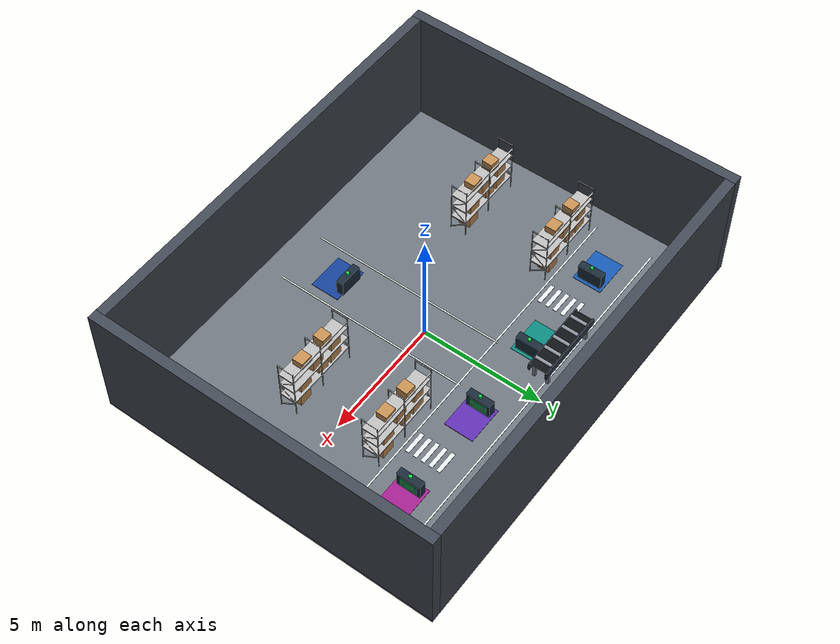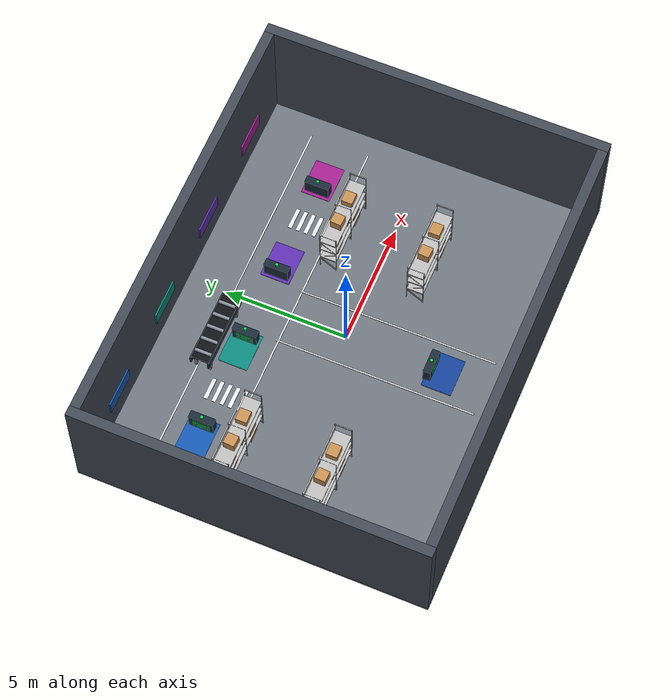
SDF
<?xml version="1.0"?>
<sdf version="1.9"><world name="default">
  <physics name="fast" type="ignored"><max_step_size>0.001</max_step_size><real_time_factor>1</real_time_factor></physics>
  <plugin filename="gz-sim-physics-system" name="gz::sim::systems::Physics"/>
  <plugin filename="gz-sim-user-commands-system" name="gz::sim::systems::UserCommands"/>
  <plugin filename="gz-sim-scene-broadcaster-system" name="gz::sim::systems::SceneBroadcaster"/>
  <plugin filename="gz-sim-sensors-system" name="gz::sim::systems::Sensors"><render_engine>ogre2</render_engine></plugin>
  <plugin filename="gz-sim-imu-system" name="gz::sim::systems::Imu"/>
  <scene>
    <ambient>0.32 0.34 0.38 1</ambient>
    <background>0.12 0.15 0.20 1</background>
    <shadows>true</shadows>
  </scene>
  <light type="directional" name="sun">
    <pose>0 0 10 0 0 0</pose>
    <diffuse>0.78 0.80 0.84 1</diffuse>
    <specular>0.25 0.25 0.25 1</specular>
    <direction>-0.3 0.2 -1</direction>
    <cast_shadows>true</cast_shadows>
  </light>
  <light type="point" name="warehouse_light_west">
    <pose>-5 0 5.0 0 0 0</pose><diffuse>0.78 0.84 1.0 1</diffuse>
    <specular>0.15 0.15 0.15 1</specular><attenuation><range>12</range><constant>0.7</constant><linear>0.03</linear><quadratic>0.01</quadratic></attenuation>
  </light>
  <light type="point" name="warehouse_light_center">
    <pose>0 0 5.0 0 0 0</pose><diffuse>0.78 0.84 1.0 1</diffuse>
    <specular>0.15 0.15 0.15 1</specular><attenuation><range>12</range><constant>0.7</constant><linear>0.03</linear><quadratic>0.01</quadratic></attenuation>
  </light>
  <light type="point" name="warehouse_light_east">
    <pose>5 0 5.0 0 0 0</pose><diffuse>0.78 0.84 1.0 1</diffuse>
    <specular>0.15 0.15 0.15 1</specular><attenuation><range>12</range><constant>0.7</constant><linear>0.03</linear><quadratic>0.01</quadratic></attenuation>
  </light>
  <model name="ground_plane">
    <static>true</static>
    <pose>0 0 0.05 0 0 0</pose>
    <link name="link">
      <collision name="collision">
        <geometry><plane><normal>0 0 1</normal><size>200 200</size></plane></geometry>
      </collision>
    </link>
  </model>
  <model name="floor">
    <static>true</static>
    <link name="link">
      <visual name="visual">
        <geometry><box><size>18 14 0.1</size></box></geometry>
        <material>
          <ambient>0.30 0.32 0.35 1</ambient>
          <diffuse>0.42 0.45 0.48 1</diffuse>
          <!-- AWS RoboMaker GroundB concrete (MIT-0), one tile per 4 m. -->
          <pbr><metal><roughness>0.88</roughness><albedo_map>textures/floor.png</albedo_map></metal></pbr>
          <texrepeat>0.25 0.25</texrepeat>
        </material>
      </visual>
    </link>
  </model>

  <!-- Visual-only traffic markings and color-coded work cells.  They do not
       alter the navigation map or LiDAR collision geometry. -->
  <model name="warehouse_floor_markings">
    <static>true</static>
    <link name="link">
      <visual name="centre_lane_left"><pose>-1.15 -1.65 0.058 0 0 0</pose><geometry><box><size>0.06 8.1 0.016</size></box></geometry><material><diffuse>0.92 0.94 0.96 1</diffuse></material></visual>
      <visual name="centre_lane_right"><pose>1.15 -1.65 0.058 0 0 0</pose><geometry><box><size>0.06 8.1 0.016</size></box></geometry><material><diffuse>0.92 0.94 0.96 1</diffuse></material></visual>
      <visual name="north_lane_lower"><pose>0 2.30 0.058 0 0 0</pose><geometry><box><size>15.5 0.06 0.016</size></box></geometry><material><diffuse>0.92 0.94 0.96 1</diffuse></material></visual>
      <visual name="north_lane_upper"><pose>0 4.72 0.058 0 0 0</pose><geometry><box><size>15.5 0.06 0.016</size></box></geometry><material><diffuse>0.92 0.94 0.96 1</diffuse></material></visual>

      <visual name="crosswalk_left_1"><pose>-4.0 2.55 0.061 0 0 0</pose><geometry><box><size>0.90 0.16 0.018</size></box></geometry><material><diffuse>0.88 0.90 0.92 1</diffuse></material></visual>
      <visual name="crosswalk_left_2"><pose>-4.0 2.88 0.061 0 0 0</pose><geometry><box><size>0.90 0.16 0.018</size></box></geometry><material><diffuse>0.88 0.90 0.92 1</diffuse></material></visual>
      <visual name="crosswalk_left_3"><pose>-4.0 3.21 0.061 0 0 0</pose><geometry><box><size>0.90 0.16 0.018</size></box></geometry><material><diffuse>0.88 0.90 0.92 1</diffuse></material></visual>
      <visual name="crosswalk_left_4"><pose>-4.0 3.54 0.061 0 0 0</pose><geometry><box><size>0.90 0.16 0.018</size></box></geometry><material><diffuse>0.88 0.90 0.92 1</diffuse></material></visual>
      <visual name="crosswalk_left_5"><pose>-4.0 3.87 0.061 0 0 0</pose><geometry><box><size>0.90 0.16 0.018</size></box></geometry><material><diffuse>0.88 0.90 0.92 1</diffuse></material></visual>
      <visual name="crosswalk_right_1"><pose>4.0 2.55 0.061 0 0 0</pose><geometry><box><size>0.90 0.16 0.018</size></box></geometry><material><diffuse>0.88 0.90 0.92 1</diffuse></material></visual>
      <visual name="crosswalk_right_2"><pose>4.0 2.88 0.061 0 0 0</pose><geometry><box><size>0.90 0.16 0.018</size></box></geometry><material><diffuse>0.88 0.90 0.92 1</diffuse></material></visual>
      <visual name="crosswalk_right_3"><pose>4.0 3.21 0.061 0 0 0</pose><geometry><box><size>0.90 0.16 0.018</size></box></geometry><material><diffuse>0.88 0.90 0.92 1</diffuse></material></visual>
      <visual name="crosswalk_right_4"><pose>4.0 3.54 0.061 0 0 0</pose><geometry><box><size>0.90 0.16 0.018</size></box></geometry><material><diffuse>0.88 0.90 0.92 1</diffuse></material></visual>
      <visual name="crosswalk_right_5"><pose>4.0 3.87 0.061 0 0 0</pose><geometry><box><size>0.90 0.16 0.018</size></box></geometry><material><diffuse>0.88 0.90 0.92 1</diffuse></material></visual>

      <visual name="home_pad"><pose>0 -4.0 0.063 0 0 0</pose><geometry><box><size>1.55 1.20 0.02</size></box></geometry><material><diffuse>0.08 0.25 0.58 1</diffuse></material></visual>
      <visual name="storage_pad"><pose>-6.0 3.5 0.063 0 0 0</pose><geometry><box><size>1.55 1.20 0.02</size></box></geometry><material><diffuse>0.08 0.34 0.68 1</diffuse></material></visual>
      <visual name="assembly_pad"><pose>-2.0 3.5 0.063 0 0 0</pose><geometry><box><size>1.55 1.20 0.02</size></box></geometry><material><diffuse>0.04 0.52 0.48 1</diffuse></material></visual>
      <visual name="inspection_pad"><pose>2.0 3.5 0.063 0 0 0</pose><geometry><box><size>1.55 1.20 0.02</size></box></geometry><material><diffuse>0.36 0.18 0.68 1</diffuse></material></visual>
      <visual name="packaging_pad"><pose>6.0 3.5 0.063 0 0 0</pose><geometry><box><size>1.55 1.20 0.02</size></box></geometry><material><diffuse>0.62 0.12 0.55 1</diffuse></material></visual>
    </link>
  </model>

  <!-- Wall-mounted color panels identify the four mission stations while
       remaining inside the already occupied north-wall footprint. -->
  <model name="station_signs">
    <static>true</static>
    <link name="link">
      <visual name="storage_sign"><pose>-6.0 6.57 1.55 0 0 0</pose><geometry><box><size>1.60 0.06 0.62</size></box></geometry><material><diffuse>0.08 0.34 0.68 1</diffuse><emissive>0.01 0.04 0.10 1</emissive></material></visual>
      <visual name="assembly_sign"><pose>-2.0 6.57 1.55 0 0 0</pose><geometry><box><size>1.60 0.06 0.62</size></box></geometry><material><diffuse>0.04 0.52 0.48 1</diffuse><emissive>0.01 0.08 0.07 1</emissive></material></visual>
      <visual name="inspection_sign"><pose>2.0 6.57 1.55 0 0 0</pose><geometry><box><size>1.60 0.06 0.62</size></box></geometry><material><diffuse>0.36 0.18 0.68 1</diffuse><emissive>0.05 0.02 0.10 1</emissive></material></visual>
      <visual name="packaging_sign"><pose>6.0 6.57 1.55 0 0 0</pose><geometry><box><size>1.60 0.06 0.62</size></box></geometry><material><diffuse>0.62 0.12 0.55 1</diffuse><emissive>0.09 0.01 0.08 1</emissive></material></visual>
    </link>
  </model>

  <!-- Walls look 5 m tall (AWS RoboMaker WallB texture, MIT-0); the 1.6 m
       collision boxes are what the LiDAR and the map use. -->
  <!-- Physical perimeter corresponding to the occupied border in
       warehouse_map.pgm (origin -9,-7, resolution 0.2 m). -->
  <model name="wall_west">
    <static>true</static><pose>-8.8 0 0.8 0 0 0</pose><link name="link">
      <collision name="collision"><geometry><box><size>0.4 14 1.6</size></box></geometry></collision>
      <visual name="visual"><pose>0 0 1.7 0 0 0</pose><geometry><box><size>0.4 14 5.0</size></box></geometry><material><diffuse>0.25 0.28 0.32 1</diffuse><pbr><metal><albedo_map>textures/wall.png</albedo_map></metal></pbr><texrepeat>0.25 0.25</texrepeat></material></visual>
    </link>
  </model>
  <model name="wall_east">
    <static>true</static><pose>8.8 0 0.8 0 0 0</pose><link name="link">
      <collision name="collision"><geometry><box><size>0.4 14 1.6</size></box></geometry></collision>
      <visual name="visual"><pose>0 0 1.7 0 0 0</pose><geometry><box><size>0.4 14 5.0</size></box></geometry><material><diffuse>0.25 0.28 0.32 1</diffuse><pbr><metal><albedo_map>textures/wall.png</albedo_map></metal></pbr><texrepeat>0.25 0.25</texrepeat></material></visual>
    </link>
  </model>
  <model name="wall_south">
    <static>true</static><pose>0 -6.8 0.8 0 0 0</pose><link name="link">
      <collision name="collision"><geometry><box><size>17.2 0.4 1.6</size></box></geometry></collision>
      <visual name="visual"><pose>0 0 1.7 0 0 0</pose><geometry><box><size>17.2 0.4 5.0</size></box></geometry><material><diffuse>0.25 0.28 0.32 1</diffuse><pbr><metal><albedo_map>textures/wall.png</albedo_map></metal></pbr><texrepeat>0.25 0.25</texrepeat></material></visual>
    </link>
  </model>
  <model name="wall_north">
    <static>true</static><pose>0 6.8 0.8 0 0 0</pose><link name="link">
      <collision name="collision"><geometry><box><size>17.2 0.4 1.6</size></box></geometry></collision>
      <visual name="visual"><pose>0 0 1.7 0 0 0</pose><geometry><box><size>17.2 0.4 5.0</size></box></geometry><material><diffuse>0.25 0.28 0.32 1</diffuse><pbr><metal><albedo_map>textures/wall.png</albedo_map></metal></pbr><texrepeat>0.25 0.25</texrepeat></material></visual>
    </link>
  </model>
  <include><uri>model://shelf</uri><name>shelf_west_1</name><pose>-6 -1.8 0 0 0 0</pose></include>
  <include><uri>model://shelf</uri><name>shelf_west_2</name><pose>-6 1.8 0 0 0 0</pose></include>
  <include><uri>model://shelf</uri><name>shelf_east_1</name><pose>4 -1.8 0 0 0 0</pose></include>
  <include><uri>model://shelf</uri><name>shelf_east_2</name><pose>4 1.8 0 0 0 0</pose></include>
  <include><uri>model://conveyor</uri><name>assembly_conveyor</name><pose>-2 4.5 0 0 0 0</pose></include>
  <!-- Physical docks sit beyond each configured docking pose, leaving the
       robot footprint and the -0.70 m staging pose collision-free. -->
  <include><uri>model://docking_station</uri><name>dock_home</name><pose>0 -3.35 0 0 0 1.57</pose></include>
  <include><uri>model://docking_station</uri><name>dock_s1</name><pose>-5.35 3.5 0 0 0 0</pose></include>
  <include><uri>model://docking_station</uri><name>dock_s2</name><pose>-1.35 3.5 0 0 0 0</pose></include>
  <include><uri>model://docking_station</uri><name>dock_s3</name><pose>1.35 3.5 0 0 0 3.14</pose></include>
  <include><uri>model://docking_station</uri><name>dock_s4</name><pose>5.35 3.5 0 0 0 3.14</pose></include>
</world></sdf>

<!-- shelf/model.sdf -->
<sdf version="1.9">
  <model name="shelf">
    <static>true</static>
    <link name="link">
      <!-- One conservative collision envelope: the LiDAR, the Nav2 map and
           physics all use it, whatever the visual detail. -->
      <collision name="collision">
        <pose>0 0 1.2 0 0 0</pose>
        <geometry><box><size>3.0 0.7 2.4</size></box></geometry>
      </collision>
      <visual name="mesh_0"><geometry><mesh><uri>meshes/shelf_0.obj</uri></mesh></geometry><material><pbr><metal><albedo_map>materials/textures/shelf_0.png</albedo_map></metal></pbr></material></visual>
      <visual name="stock_lower_1"><pose>-0.85 0.0 0.935 0 0 0.05</pose><geometry><box><size>0.6 0.5 0.45</size></box></geometry><material><diffuse>0.76 0.55 0.32 1</diffuse><pbr><metal><albedo_map>model://cargo_box/materials/textures/cardboard.png</albedo_map></metal></pbr><texrepeat>1.2 1.2</texrepeat></material></visual>
      <visual name="stock_lower_2"><pose>-0.2 0.02 0.885 0 0 -0.08</pose><geometry><box><size>0.45 0.45 0.35</size></box></geometry><material><diffuse>0.76 0.55 0.32 1</diffuse><pbr><metal><albedo_map>model://cargo_box/materials/textures/cardboard.png</albedo_map></metal></pbr><texrepeat>1.2 1.2</texrepeat></material></visual>
      <visual name="stock_lower_3"><pose>0.75 -0.02 0.960 0 0 0.0</pose><geometry><box><size>0.55 0.5 0.5</size></box></geometry><material><diffuse>0.76 0.55 0.32 1</diffuse><pbr><metal><albedo_map>model://cargo_box/materials/textures/cardboard.png</albedo_map></metal></pbr><texrepeat>1.2 1.2</texrepeat></material></visual>
      <visual name="stock_middle_1"><pose>-0.9 0.0 1.490 0 0 0.0</pose><geometry><box><size>0.5 0.5 0.4</size></box></geometry><material><diffuse>0.76 0.55 0.32 1</diffuse><pbr><metal><albedo_map>model://cargo_box/materials/textures/cardboard.png</albedo_map></metal></pbr><texrepeat>1.2 1.2</texrepeat></material></visual>
      <visual name="stock_middle_2"><pose>0.1 0.01 1.515 0 0 0.1</pose><geometry><box><size>0.6 0.5 0.45</size></box></geometry><material><diffuse>0.76 0.55 0.32 1</diffuse><pbr><metal><albedo_map>model://cargo_box/materials/textures/cardboard.png</albedo_map></metal></pbr><texrepeat>1.2 1.2</texrepeat></material></visual>
      <visual name="stock_upper_1"><pose>-0.5 0.0 2.060 0 0 -0.05</pose><geometry><box><size>0.45 0.45 0.4</size></box></geometry><material><diffuse>0.76 0.55 0.32 1</diffuse><pbr><metal><albedo_map>model://cargo_box/materials/textures/cardboard.png</albedo_map></metal></pbr><texrepeat>1.2 1.2</texrepeat></material></visual>
      <visual name="stock_upper_2"><pose>0.6 0.0 2.010 0 0 0.0</pose><geometry><box><size>0.5 0.45 0.3</size></box></geometry><material><diffuse>0.76 0.55 0.32 1</diffuse><pbr><metal><albedo_map>model://cargo_box/materials/textures/cardboard.png</albedo_map></metal></pbr><texrepeat>1.2 1.2</texrepeat></material></visual>
      <visual name="stock_floor_1"><pose>0.85 0.0 0.250 0 0 0.03</pose><geometry><box><size>0.55 0.5 0.5</size></box></geometry><material><diffuse>0.76 0.55 0.32 1</diffuse><pbr><metal><albedo_map>model://cargo_box/materials/textures/cardboard.png</albedo_map></metal></pbr><texrepeat>1.2 1.2</texrepeat></material></visual>
    </link>
  </model>
</sdf>

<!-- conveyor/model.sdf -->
<sdf version="1.9">
  <model name="conveyor">
    <static>true</static>
    <link name="link">
      <collision name="collision_belt">
        <pose>0 0 0.82 0 0 0</pose>
        <geometry><box><size>3.0 0.8 0.36</size></box></geometry>
      </collision>
      <collision name="collision_leg_1"><pose>-1.2 -0.28 0.38 0 0 0</pose><geometry><box><size>0.12 0.12 0.76</size></box></geometry></collision>
      <collision name="collision_leg_2"><pose>-1.2 0.28 0.38 0 0 0</pose><geometry><box><size>0.12 0.12 0.76</size></box></geometry></collision>
      <collision name="collision_leg_3"><pose>1.2 -0.28 0.38 0 0 0</pose><geometry><box><size>0.12 0.12 0.76</size></box></geometry></collision>
      <collision name="collision_leg_4"><pose>1.2 0.28 0.38 0 0 0</pose><geometry><box><size>0.12 0.12 0.76</size></box></geometry></collision>
      <visual name="belt">
        <pose>0 0 0.92 0 0 0</pose>
        <geometry><box><size>2.85 0.68 0.10</size></box></geometry>
        <material><diffuse>0.055 0.065 0.075 1</diffuse><pbr><metal><roughness>0.75</roughness></metal></pbr></material>
      </visual>
      <visual name="left_frame"><pose>0 -0.36 0.79 0 0 0</pose><geometry><box><size>3.0 0.08 0.30</size></box></geometry><material><diffuse>0.18 0.22 0.27 1</diffuse><pbr><metal><roughness>0.35</roughness></metal></pbr></material></visual>
      <visual name="right_frame"><pose>0 0.36 0.79 0 0 0</pose><geometry><box><size>3.0 0.08 0.30</size></box></geometry><material><diffuse>0.18 0.22 0.27 1</diffuse><pbr><metal><roughness>0.35</roughness></metal></pbr></material></visual>
      <visual name="leg_1"><pose>-1.20 -0.28 0.38 0 0 0</pose><geometry><box><size>0.12 0.12 0.76</size></box></geometry><material><diffuse>0.48 0.52 0.57 1</diffuse></material></visual>
      <visual name="leg_2"><pose>-1.20 0.28 0.38 0 0 0</pose><geometry><box><size>0.12 0.12 0.76</size></box></geometry><material><diffuse>0.48 0.52 0.57 1</diffuse></material></visual>
      <visual name="leg_3"><pose>1.20 -0.28 0.38 0 0 0</pose><geometry><box><size>0.12 0.12 0.76</size></box></geometry><material><diffuse>0.48 0.52 0.57 1</diffuse></material></visual>
      <visual name="leg_4"><pose>1.20 0.28 0.38 0 0 0</pose><geometry><box><size>0.12 0.12 0.76</size></box></geometry><material><diffuse>0.48 0.52 0.57 1</diffuse></material></visual>
      <visual name="roller_1"><pose>-1.1 0 0.98 1.5708 0 0</pose><geometry><cylinder><radius>0.07</radius><length>0.68</length></cylinder></geometry><material><diffuse>0.55 0.58 0.62 1</diffuse><pbr><metal><roughness>0.25</roughness></metal></pbr></material></visual>
      <visual name="roller_2"><pose>-0.55 0 0.98 1.5708 0 0</pose><geometry><cylinder><radius>0.07</radius><length>0.68</length></cylinder></geometry><material><diffuse>0.55 0.58 0.62 1</diffuse><pbr><metal><roughness>0.25</roughness></metal></pbr></material></visual>
      <visual name="roller_3"><pose>0 0 0.98 1.5708 0 0</pose><geometry><cylinder><radius>0.07</radius><length>0.68</length></cylinder></geometry><material><diffuse>0.55 0.58 0.62 1</diffuse><pbr><metal><roughness>0.25</roughness></metal></pbr></material></visual>
      <visual name="roller_4"><pose>0.55 0 0.98 1.5708 0 0</pose><geometry><cylinder><radius>0.07</radius><length>0.68</length></cylinder></geometry><material><diffuse>0.55 0.58 0.62 1</diffuse><pbr><metal><roughness>0.25</roughness></metal></pbr></material></visual>
      <visual name="roller_5"><pose>1.1 0 0.98 1.5708 0 0</pose><geometry><cylinder><radius>0.07</radius><length>0.68</length></cylinder></geometry><material><diffuse>0.55 0.58 0.62 1</diffuse><pbr><metal><roughness>0.25</roughness></metal></pbr></material></visual>
    </link>
  </model>
</sdf>

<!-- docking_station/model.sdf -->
<sdf version="1.9">
  <model name="docking_station">
    <static>true</static>
    <link name="link">
      <collision name="collision">
        <pose>-0.15 0 0.35 0 0 0</pose>
        <geometry><box><size>0.3 1.0 0.7</size></box></geometry>
      </collision>
      <visual name="body">
        <pose>-0.15 0 0.35 0 0 0</pose>
        <geometry><box><size>0.30 1.0 0.70</size></box></geometry>
        <material><diffuse>0.10 0.16 0.22 1</diffuse><pbr><metal><roughness>0.35</roughness></metal></pbr></material>
      </visual>
      <visual name="charging_face">
        <pose>-0.306 0 0.35 0 0 0</pose>
        <geometry><box><size>0.02 0.70 0.42</size></box></geometry>
        <material><diffuse>0.05 0.60 0.28 1</diffuse><emissive>0.01 0.12 0.04 1</emissive></material>
      </visual>
      <visual name="contact_left">
        <pose>-0.32 -0.20 0.35 0 1.5708 0</pose>
        <geometry><cylinder><radius>0.055</radius><length>0.025</length></cylinder></geometry>
        <material><diffuse>0.72 0.76 0.80 1</diffuse><pbr><metal><roughness>0.18</roughness></metal></pbr></material>
      </visual>
      <visual name="contact_right">
        <pose>-0.32 0.20 0.35 0 1.5708 0</pose>
        <geometry><cylinder><radius>0.055</radius><length>0.025</length></cylinder></geometry>
        <material><diffuse>0.72 0.76 0.80 1</diffuse><pbr><metal><roughness>0.18</roughness></metal></pbr></material>
      </visual>
      <visual name="status_light">
        <pose>-0.15 0 0.76 0 0 0</pose>
        <geometry><cylinder><radius>0.06</radius><length>0.10</length></cylinder></geometry>
        <material><diffuse>0.05 0.95 0.30 1</diffuse><emissive>0.02 0.55 0.08 1</emissive></material>
      </visual>
      <visual name="guide_left"><pose>-0.72 -0.40 0.008 0 0 0</pose><geometry><box><size>0.90 0.07 0.016</size></box></geometry><material><diffuse>0.10 0.72 0.86 1</diffuse></material></visual>
      <visual name="guide_right"><pose>-0.72 0.40 0.008 0 0 0</pose><geometry><box><size>0.90 0.07 0.016</size></box></geometry><material><diffuse>0.10 0.72 0.86 1</diffuse></material></visual>
    </link>
  </model>
</sdf>
